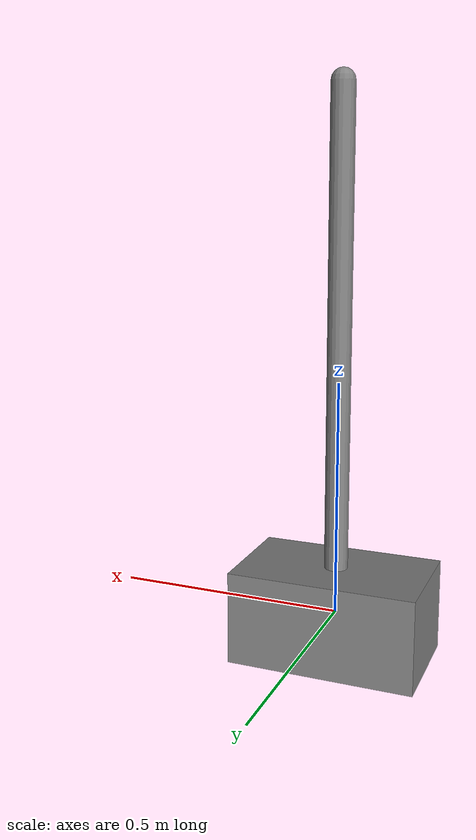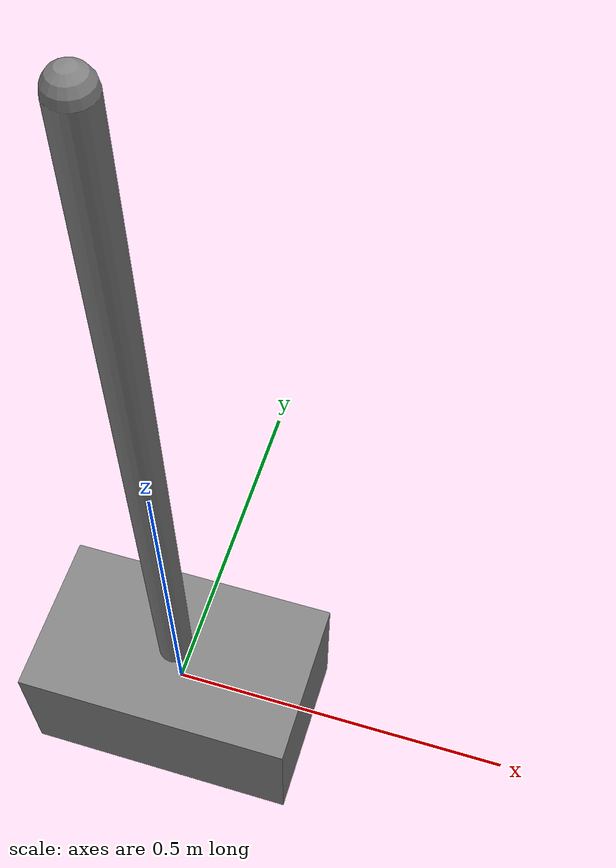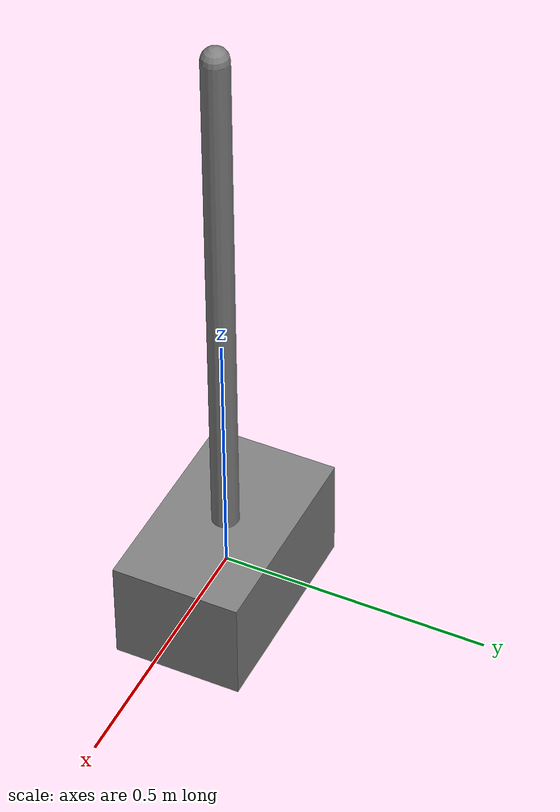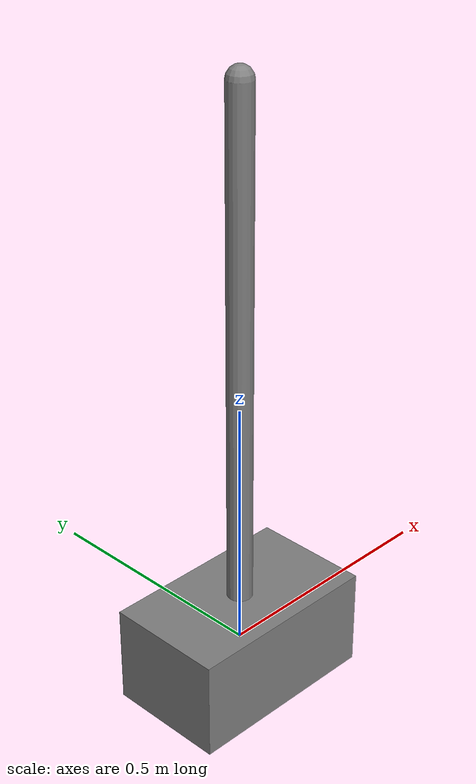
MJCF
<mujoco model="imported_cartpole">
  <compiler angle="radian"/>
  <option timestep="0.01" gravity="0 0 -9.81"/>
  <worldbody>
    <body name="cart">
      <inertial mass="1" diaginertia="0.05 0.05 0.05"/>
      <joint name="rail" type="slide" axis="1 0 0"
             limited="true" range="-2 2"/>
      <geom name="cart_box" type="box" size="0.2 0.12 0.1"/>
      <body name="pole" pos="0 0 0.1">
        <inertial pos="0 0 0.5" mass="0.1" diaginertia="0.01 0.01 0.001"/>
        <joint name="pole_hinge" type="hinge" axis="0 1 0" damping="0.01"/>
        <geom name="pole_rod" type="capsule" size="0.025 0.5" pos="0 0 0.5"/>
      </body>
    </body>
  </worldbody>
  <actuator>
    <motor name="cart_motor" joint="rail" gear="1" ctrlrange="-10 10"/>
  </actuator>
  <keyframe>
    <key name="near_upright" qpos="0 0.05"/>
  </keyframe>
</mujoco>
